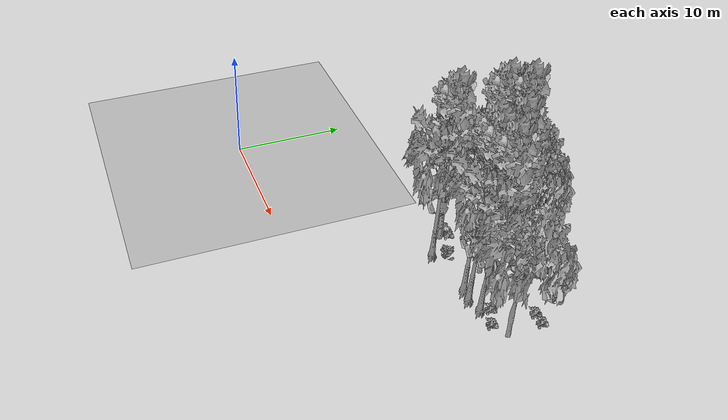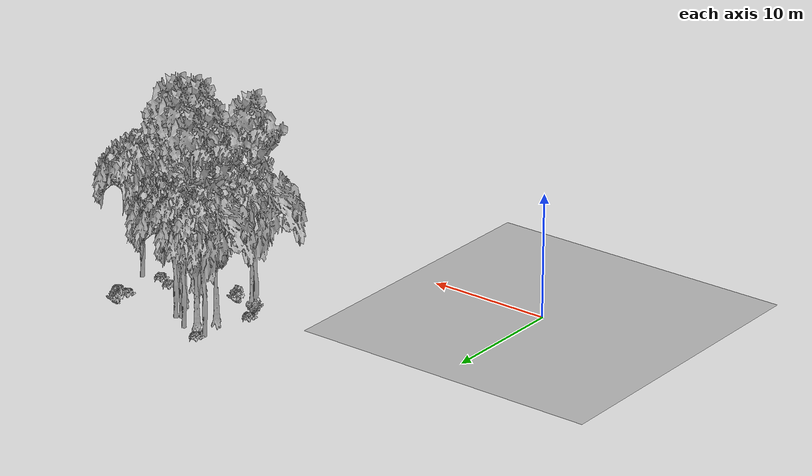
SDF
<sdf version="1.7">
 <world name="default">
  <model name="ground_plane">
   <static>1</static>
   <link name="link">
    <collision name="collision">
     <pose>-50 0 0 0 -0 0</pose>
     <geometry><plane><normal>0 0 1</normal><size>80 80</size></plane></geometry>
     <surface><contact><ode><min_depth>0.01</min_depth><max_vel>0</max_vel></ode></contact></surface>
    </collision>
    <visual name="grass">
     <cast_shadows>0</cast_shadows>
     <geometry>
      <mesh>
       <scale>0.46714285714285714 0.46714285714285714 0.1</scale>
       <uri>file://grass_plane/meshes/grass_plane.dae</uri>
      </mesh>
     </geometry>
    </visual>
   </link>
  </model>
  <model name="Tree 73">
   <static>1</static>
   <pose>23.27902216675262 11.709637553765944 0 1.57079 -0 0</pose>
   <link name="link">
    <collision name="collision">
     <geometry><mesh><scale>3.5 5 3.5</scale><uri>model://tree_9/meshes/tree_9.obj</uri></mesh></geometry>
    </collision>
    <visual name="visual">
     <geometry><mesh><scale>3.5 5 3.5</scale><uri>model://tree_9/meshes/tree_9.obj</uri></mesh></geometry>
    </visual>
   </link>
  </model>
  <model name="Tree 177">
   <static>1</static>
   <pose>28.459081748070403 12.609956711128604 0 1.57079 -0 0</pose>
   <link name="link">
    <collision name="collision">
     <geometry><mesh><scale>3.5 5 3.5</scale><uri>model://tree_2/meshes/tree_2.obj</uri></mesh></geometry>
    </collision>
    <visual name="visual">
     <geometry><mesh><scale>3.5 5 3.5</scale><uri>model://tree_2/meshes/tree_2.obj</uri></mesh></geometry>
    </visual>
   </link>
  </model>
  <model name="Tree 209">
   <static>1</static>
   <pose>21.578448004334597 16.612182910441675 0 1.57079 -0 0</pose>
   <link name="link">
    <collision name="collision">
     <geometry><mesh><scale>3.5 5 3.5</scale><uri>model://tree_2/meshes/tree_2.obj</uri></mesh></geometry>
    </collision>
    <visual name="visual">
     <geometry><mesh><scale>3.5 5 3.5</scale><uri>model://tree_2/meshes/tree_2.obj</uri></mesh></geometry>
    </visual>
   </link>
  </model>
  <model name="Tree 229">
   <static>1</static>
   <pose>19.029684518694147 15.091531437444978 0 1.57079 -0 0</pose>
   <link name="link">
    <collision name="collision">
     <geometry><mesh><scale>3.5 5 3.5</scale><uri>model://tree_9/meshes/tree_9.obj</uri></mesh></geometry>
    </collision>
    <visual name="visual">
     <geometry><mesh><scale>3.5 5 3.5</scale><uri>model://tree_9/meshes/tree_9.obj</uri></mesh></geometry>
    </visual>
   </link>
  </model>
  <model name="Tree 355">
   <static>1</static>
   <pose>24.29227579698979 11.605951398683402 0 1.57079 -0 0</pose>
   <link name="link">
    <collision name="collision">
     <geometry><mesh><scale>3.5 5 3.5</scale><uri>model://tree_9/meshes/tree_9.obj</uri></mesh></geometry>
    </collision>
    <visual name="visual">
     <geometry><mesh><scale>3.5 5 3.5</scale><uri>model://tree_9/meshes/tree_9.obj</uri></mesh></geometry>
    </visual>
   </link>
  </model>
  <model name="Tree 390">
   <static>1</static>
   <pose>19.93787061984512 17.572977017890814 0 1.57079 -0 0</pose>
   <link name="link">
    <collision name="collision">
     <geometry><mesh><scale>3.5 5 3.5</scale><uri>model://tree_2/meshes/tree_2.obj</uri></mesh></geometry>
    </collision>
    <visual name="visual">
     <geometry><mesh><scale>3.5 5 3.5</scale><uri>model://tree_2/meshes/tree_2.obj</uri></mesh></geometry>
    </visual>
   </link>
  </model>
  <model name="Tree 429">
   <static>1</static>
   <pose>23.15966208763603 13.978610339961612 0 1.57079 -0 0</pose>
   <link name="link">
    <collision name="collision">
     <geometry><mesh><scale>3.5 5 3.5</scale><uri>model://tree_9/meshes/tree_9.obj</uri></mesh></geometry>
    </collision>
    <visual name="visual">
     <geometry><mesh><scale>3.5 5 3.5</scale><uri>model://tree_9/meshes/tree_9.obj</uri></mesh></geometry>
    </visual>
   </link>
  </model>
  <model name="Tree 444">
   <static>1</static>
   <pose>19.653948756879586 16.5752794341821 0 1.57079 -0 0</pose>
   <link name="link">
    <collision name="collision">
     <geometry><mesh><scale>3.5 5 3.5</scale><uri>model://tree_9/meshes/tree_9.obj</uri></mesh></geometry>
    </collision>
    <visual name="visual">
     <geometry><mesh><scale>3.5 5 3.5</scale><uri>model://tree_9/meshes/tree_9.obj</uri></mesh></geometry>
    </visual>
   </link>
  </model>
  <model name="Tree 469">
   <static>1</static>
   <pose>17.70899699103652 17.81969193320308 0 1.57079 -0 0</pose>
   <link name="link">
    <collision name="collision">
     <geometry><mesh><scale>3.5 5 3.5</scale><uri>model://tree_2/meshes/tree_2.obj</uri></mesh></geometry>
    </collision>
    <visual name="visual">
     <geometry><mesh><scale>3.5 5 3.5</scale><uri>model://tree_2/meshes/tree_2.obj</uri></mesh></geometry>
    </visual>
   </link>
  </model>
  <model name="Tree 470">
   <static>1</static>
   <pose>25.532391340054446 11.935950262527498 0 1.57079 -0 0</pose>
   <link name="link">
    <collision name="collision">
     <geometry><mesh><scale>3.5 5 3.5</scale><uri>model://tree_9/meshes/tree_9.obj</uri></mesh></geometry>
    </collision>
    <visual name="visual">
     <geometry><mesh><scale>3.5 5 3.5</scale><uri>model://tree_9/meshes/tree_9.obj</uri></mesh></geometry>
    </visual>
   </link>
  </model>
  <model name="Tree 486">
   <static>1</static>
   <pose>21.887322063003957 13.788226679137324 0 1.57079 -0 0</pose>
   <link name="link">
    <collision name="collision">
     <geometry><mesh><scale>3.5 5 3.5</scale><uri>model://tree_2/meshes/tree_2.obj</uri></mesh></geometry>
    </collision>
    <visual name="visual">
     <geometry><mesh><scale>3.5 5 3.5</scale><uri>model://tree_2/meshes/tree_2.obj</uri></mesh></geometry>
    </visual>
   </link>
  </model>
  <model name="Tree 532">
   <static>1</static>
   <pose>21.205693955553173 16.38853277307139 0 1.57079 -0 0</pose>
   <link name="link">
    <collision name="collision">
     <geometry><mesh><scale>3.5 5 3.5</scale><uri>model://tree_2/meshes/tree_2.obj</uri></mesh></geometry>
    </collision>
    <visual name="visual">
     <geometry><mesh><scale>3.5 5 3.5</scale><uri>model://tree_2/meshes/tree_2.obj</uri></mesh></geometry>
    </visual>
   </link>
  </model>
  <model name="Tree 552">
   <static>1</static>
   <pose>17.250174577667735 12.54719016276303 0 1.57079 -0 0</pose>
   <link name="link">
    <collision name="collision">
     <geometry><mesh><scale>3.5 5 3.5</scale><uri>model://tree_2/meshes/tree_2.obj</uri></mesh></geometry>
    </collision>
    <visual name="visual">
     <geometry><mesh><scale>3.5 5 3.5</scale><uri>model://tree_2/meshes/tree_2.obj</uri></mesh></geometry>
    </visual>
   </link>
  </model>
  <model name="Tree 570">
   <static>1</static>
   <pose>18.86778263475331 11.11146382325078 0 1.57079 -0 0</pose>
   <link name="link">
    <collision name="collision">
     <geometry><mesh><scale>3.5 5 3.5</scale><uri>model://tree_9/meshes/tree_9.obj</uri></mesh></geometry>
    </collision>
    <visual name="visual">
     <geometry><mesh><scale>3.5 5 3.5</scale><uri>model://tree_9/meshes/tree_9.obj</uri></mesh></geometry>
    </visual>
   </link>
  </model>
  <model name="Bush 41">
   <static>1</static>
   <pose>18.132096283387106 18.361877015674544 0 1.57079 -0 0</pose>
   <link name="link">
    <collision name="collision">
     <geometry><mesh><scale>2 2 2</scale><uri>model://bush_2/meshes/bush_2.obj</uri></mesh></geometry>
     <surface><contact><collide_without_contact>false</collide_without_contact></contact></surface>
    </collision>
    <visual name="visual">
     <geometry><mesh><scale>2 2 2</scale><uri>model://bush_2/meshes/bush_2.obj</uri></mesh></geometry>
    </visual>
   </link>
  </model>
  <model name="Bush 59">
   <static>1</static>
   <pose>28.26689298665373 15.661819859092375 0 1.57079 -0 0</pose>
   <link name="link">
    <collision name="collision">
     <geometry><mesh><scale>2 2 2</scale><uri>model://bush_2/meshes/bush_2.obj</uri></mesh></geometry>
     <surface><contact><collide_without_contact>false</collide_without_contact></contact></surface>
    </collision>
    <visual name="visual">
     <geometry><mesh><scale>2 2 2</scale><uri>model://bush_2/meshes/bush_2.obj</uri></mesh></geometry>
    </visual>
   </link>
  </model>
  <model name="Bush 81">
   <static>1</static>
   <pose>17.254777167737082 13.36731289558503 0 1.57079 -0 0</pose>
   <link name="link">
    <collision name="collision">
     <geometry><mesh><scale>2 2 2</scale><uri>model://bush_2/meshes/bush_2.obj</uri></mesh></geometry>
     <surface><contact><collide_without_contact>false</collide_without_contact></contact></surface>
    </collision>
    <visual name="visual">
     <geometry><mesh><scale>2 2 2</scale><uri>model://bush_2/meshes/bush_2.obj</uri></mesh></geometry>
    </visual>
   </link>
  </model>
  <model name="Bush 102">
   <static>1</static>
   <pose>27.169365413675138 12.00194908290225 0 1.57079 -0 0</pose>
   <link name="link">
    <collision name="collision">
     <geometry><mesh><scale>2 2 2</scale><uri>model://bush_2/meshes/bush_2.obj</uri></mesh></geometry>
     <surface><contact><collide_without_contact>false</collide_without_contact></contact></surface>
    </collision>
    <visual name="visual">
     <geometry><mesh><scale>2 2 2</scale><uri>model://bush_2/meshes/bush_2.obj</uri></mesh></geometry>
    </visual>
   </link>
  </model>
  <model name="Bush 284">
   <static>1</static>
   <pose>25.796422632274016 12.646064227737888 0 1.57079 -0 0</pose>
   <link name="link">
    <collision name="collision">
     <geometry><mesh><scale>2 2 2</scale><uri>model://bush_2/meshes/bush_2.obj</uri></mesh></geometry>
     <surface><contact><collide_without_contact>false</collide_without_contact></contact></surface>
    </collision>
    <visual name="visual">
     <geometry><mesh><scale>2 2 2</scale><uri>model://bush_2/meshes/bush_2.obj</uri></mesh></geometry>
    </visual>
   </link>
  </model>
  <model name="Bush 349">
   <static>1</static>
   <pose>19.670198545674907 11.893654740702601 0 1.57079 -0 0</pose>
   <link name="link">
    <collision name="collision">
     <geometry><mesh><scale>2 2 2</scale><uri>model://bush_4/meshes/bush_4.obj</uri></mesh></geometry>
     <surface><contact><collide_without_contact>false</collide_without_contact></contact></surface>
    </collision>
    <visual name="visual">
     <geometry><mesh><scale>2 2 2</scale><uri>model://bush_4/meshes/bush_4.obj</uri></mesh></geometry>
    </visual>
   </link>
  </model>
  <model name="Bush 368">
   <static>1</static>
   <pose>17.152534272387214 12.94724255408812 0 1.57079 -0 0</pose>
   <link name="link">
    <collision name="collision">
     <geometry><mesh><scale>2 2 2</scale><uri>model://bush_0/meshes/bush_0.obj</uri></mesh></geometry>
     <surface><contact><collide_without_contact>false</collide_without_contact></contact></surface>
    </collision>
    <visual name="visual">
     <geometry><mesh><scale>2 2 2</scale><uri>model://bush_0/meshes/bush_0.obj</uri></mesh></geometry>
    </visual>
   </link>
  </model>
  <model name="Bush 400">
   <static>1</static>
   <pose>26.716985899645906 17.566556459430196 0 1.57079 -0 0</pose>
   <link name="link">
    <collision name="collision">
     <geometry><mesh><scale>2 2 2</scale><uri>model://bush_4/meshes/bush_4.obj</uri></mesh></geometry>
     <surface><contact><collide_without_contact>false</collide_without_contact></contact></surface>
    </collision>
    <visual name="visual">
     <geometry><mesh><scale>2 2 2</scale><uri>model://bush_4/meshes/bush_4.obj</uri></mesh></geometry>
    </visual>
   </link>
  </model>
  <model name="Bush 533">
   <static>1</static>
   <pose>27.268606143052708 15.694786454245495 0 1.57079 -0 0</pose>
   <link name="link">
    <collision name="collision">
     <geometry><mesh><scale>2 2 2</scale><uri>model://bush_2/meshes/bush_2.obj</uri></mesh></geometry>
     <surface><contact><collide_without_contact>false</collide_without_contact></contact></surface>
    </collision>
    <visual name="visual">
     <geometry><mesh><scale>2 2 2</scale><uri>model://bush_2/meshes/bush_2.obj</uri></mesh></geometry>
    </visual>
   </link>
  </model>
 </world>
</sdf>
